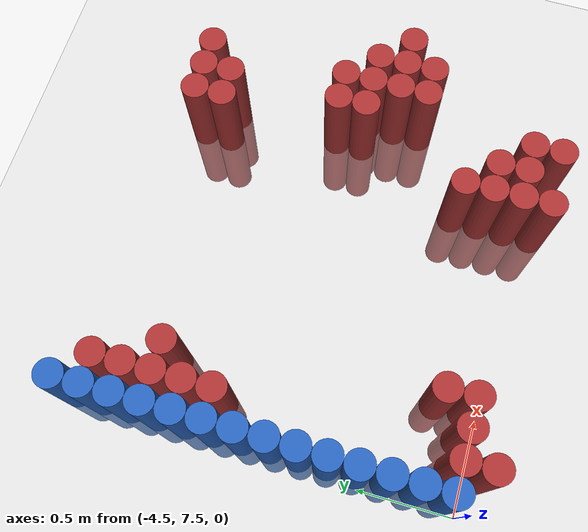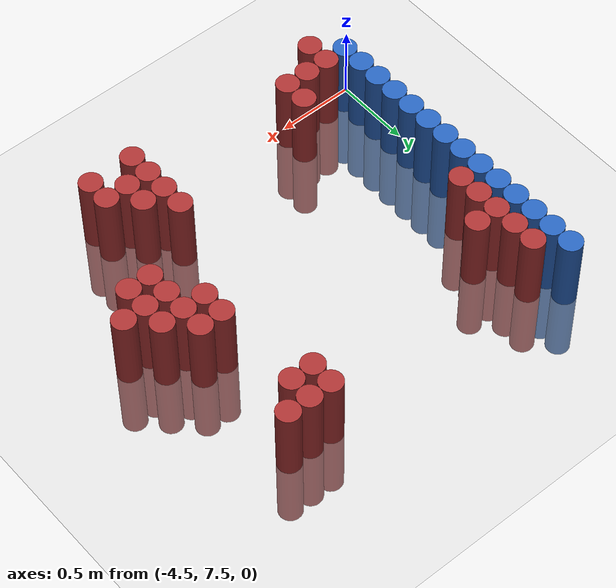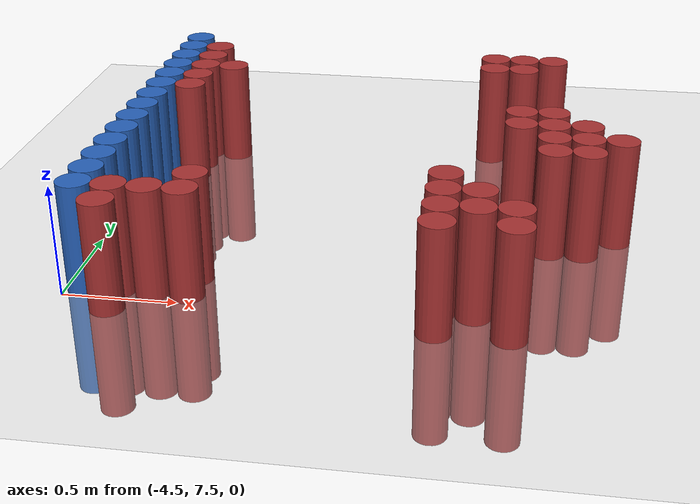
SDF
<sdf version="1.6">
 <world name="default">
  <model name="ground_plane">
   <static>1</static>
   <link name="link">
    <collision name="collision">
     <geometry><plane><normal>0 0 1</normal><size>100 100</size></plane></geometry>
     <surface><friction><ode><mu>100</mu><mu2>50</mu2></ode></friction></surface>
    </collision>
    <visual name="visual">
     <cast_shadows>0</cast_shadows>
     <geometry><plane><normal>0 0 1</normal><size>100 100</size></plane></geometry>
     <material>
      <script><uri>file://media/materials/scripts/gazebo.material</uri><name>Gazebo/Grey</name></script>
     </material>
    </visual>
   </link>
  </model>
  <model name="unit_cylinder_112">
   <static>1</static>
   <pose>-4.425000 7.575000 0.000000 0.000000 0.000000 0.000000</pose>
   <link name="link">
    <inertial>
     <mass>1</mass>
     <inertia><ixx>0.145833</ixx><ixy>0</ixy><ixz>0</ixz><iyy>0.145833</iyy><iyz>0</iyz><izz>0.125</izz></inertia>
    </inertial>
    <collision name="collision">
     <geometry><cylinder><radius>0.075000</radius><length>1</length></cylinder></geometry>
    </collision>
    <visual name="visual">
     <geometry><cylinder><radius>0.075000</radius><length>1</length></cylinder></geometry>
     <material>
      <ambient>0.152000 0.379000 0.720000 1</ambient>
      <diffuse>0.152000 0.379000 0.720000 1</diffuse>
     </material>
     <material>
      <script><name>Gazebo/Grey</name><uri>file://media/materials/scripts/gazebo.material</uri></script>
     </material>
    </visual>
   </link>
  </model>
  <model name="unit_cylinder_113">
   <static>1</static>
   <pose>-4.425000 7.725000 0.000000 0.000000 0.000000 0.000000</pose>
   <link name="link">
    <inertial>
     <mass>1</mass>
     <inertia><ixx>0.145833</ixx><ixy>0</ixy><ixz>0</ixz><iyy>0.145833</iyy><iyz>0</iyz><izz>0.125</izz></inertia>
    </inertial>
    <collision name="collision">
     <geometry><cylinder><radius>0.075000</radius><length>1</length></cylinder></geometry>
    </collision>
    <visual name="visual">
     <geometry><cylinder><radius>0.075000</radius><length>1</length></cylinder></geometry>
     <material>
      <ambient>0.152000 0.379000 0.720000 1</ambient>
      <diffuse>0.152000 0.379000 0.720000 1</diffuse>
     </material>
     <material>
      <script><name>Gazebo/Grey</name><uri>file://media/materials/scripts/gazebo.material</uri></script>
     </material>
    </visual>
   </link>
  </model>
  <model name="unit_cylinder_114">
   <static>1</static>
   <pose>-4.425000 7.875000 0.000000 0.000000 0.000000 0.000000</pose>
   <link name="link">
    <inertial>
     <mass>1</mass>
     <inertia><ixx>0.145833</ixx><ixy>0</ixy><ixz>0</ixz><iyy>0.145833</iyy><iyz>0</iyz><izz>0.125</izz></inertia>
    </inertial>
    <collision name="collision">
     <geometry><cylinder><radius>0.075000</radius><length>1</length></cylinder></geometry>
    </collision>
    <visual name="visual">
     <geometry><cylinder><radius>0.075000</radius><length>1</length></cylinder></geometry>
     <material>
      <ambient>0.152000 0.379000 0.720000 1</ambient>
      <diffuse>0.152000 0.379000 0.720000 1</diffuse>
     </material>
     <material>
      <script><name>Gazebo/Grey</name><uri>file://media/materials/scripts/gazebo.material</uri></script>
     </material>
    </visual>
   </link>
  </model>
  <model name="unit_cylinder_115">
   <static>1</static>
   <pose>-4.425000 8.025000 0.000000 0.000000 0.000000 0.000000</pose>
   <link name="link">
    <inertial>
     <mass>1</mass>
     <inertia><ixx>0.145833</ixx><ixy>0</ixy><ixz>0</ixz><iyy>0.145833</iyy><iyz>0</iyz><izz>0.125</izz></inertia>
    </inertial>
    <collision name="collision">
     <geometry><cylinder><radius>0.075000</radius><length>1</length></cylinder></geometry>
    </collision>
    <visual name="visual">
     <geometry><cylinder><radius>0.075000</radius><length>1</length></cylinder></geometry>
     <material>
      <ambient>0.152000 0.379000 0.720000 1</ambient>
      <diffuse>0.152000 0.379000 0.720000 1</diffuse>
     </material>
     <material>
      <script><name>Gazebo/Grey</name><uri>file://media/materials/scripts/gazebo.material</uri></script>
     </material>
    </visual>
   </link>
  </model>
  <model name="unit_cylinder_116">
   <static>1</static>
   <pose>-4.425000 8.175000 0.000000 0.000000 0.000000 0.000000</pose>
   <link name="link">
    <inertial>
     <mass>1</mass>
     <inertia><ixx>0.145833</ixx><ixy>0</ixy><ixz>0</ixz><iyy>0.145833</iyy><iyz>0</iyz><izz>0.125</izz></inertia>
    </inertial>
    <collision name="collision">
     <geometry><cylinder><radius>0.075000</radius><length>1</length></cylinder></geometry>
    </collision>
    <visual name="visual">
     <geometry><cylinder><radius>0.075000</radius><length>1</length></cylinder></geometry>
     <material>
      <ambient>0.152000 0.379000 0.720000 1</ambient>
      <diffuse>0.152000 0.379000 0.720000 1</diffuse>
     </material>
     <material>
      <script><name>Gazebo/Grey</name><uri>file://media/materials/scripts/gazebo.material</uri></script>
     </material>
    </visual>
   </link>
  </model>
  <model name="unit_cylinder_117">
   <static>1</static>
   <pose>-4.425000 8.325000 0.000000 0.000000 0.000000 0.000000</pose>
   <link name="link">
    <inertial>
     <mass>1</mass>
     <inertia><ixx>0.145833</ixx><ixy>0</ixy><ixz>0</ixz><iyy>0.145833</iyy><iyz>0</iyz><izz>0.125</izz></inertia>
    </inertial>
    <collision name="collision">
     <geometry><cylinder><radius>0.075000</radius><length>1</length></cylinder></geometry>
    </collision>
    <visual name="visual">
     <geometry><cylinder><radius>0.075000</radius><length>1</length></cylinder></geometry>
     <material>
      <ambient>0.152000 0.379000 0.720000 1</ambient>
      <diffuse>0.152000 0.379000 0.720000 1</diffuse>
     </material>
     <material>
      <script><name>Gazebo/Grey</name><uri>file://media/materials/scripts/gazebo.material</uri></script>
     </material>
    </visual>
   </link>
  </model>
  <model name="unit_cylinder_118">
   <static>1</static>
   <pose>-4.425000 8.475000 0.000000 0.000000 0.000000 0.000000</pose>
   <link name="link">
    <inertial>
     <mass>1</mass>
     <inertia><ixx>0.145833</ixx><ixy>0</ixy><ixz>0</ixz><iyy>0.145833</iyy><iyz>0</iyz><izz>0.125</izz></inertia>
    </inertial>
    <collision name="collision">
     <geometry><cylinder><radius>0.075000</radius><length>1</length></cylinder></geometry>
    </collision>
    <visual name="visual">
     <geometry><cylinder><radius>0.075000</radius><length>1</length></cylinder></geometry>
     <material>
      <ambient>0.152000 0.379000 0.720000 1</ambient>
      <diffuse>0.152000 0.379000 0.720000 1</diffuse>
     </material>
     <material>
      <script><name>Gazebo/Grey</name><uri>file://media/materials/scripts/gazebo.material</uri></script>
     </material>
    </visual>
   </link>
  </model>
  <model name="unit_cylinder_119">
   <static>1</static>
   <pose>-4.425000 8.625000 0.000000 0.000000 0.000000 0.000000</pose>
   <link name="link">
    <inertial>
     <mass>1</mass>
     <inertia><ixx>0.145833</ixx><ixy>0</ixy><ixz>0</ixz><iyy>0.145833</iyy><iyz>0</iyz><izz>0.125</izz></inertia>
    </inertial>
    <collision name="collision">
     <geometry><cylinder><radius>0.075000</radius><length>1</length></cylinder></geometry>
    </collision>
    <visual name="visual">
     <geometry><cylinder><radius>0.075000</radius><length>1</length></cylinder></geometry>
     <material>
      <ambient>0.152000 0.379000 0.720000 1</ambient>
      <diffuse>0.152000 0.379000 0.720000 1</diffuse>
     </material>
     <material>
      <script><name>Gazebo/Grey</name><uri>file://media/materials/scripts/gazebo.material</uri></script>
     </material>
    </visual>
   </link>
  </model>
  <model name="unit_cylinder_120">
   <static>1</static>
   <pose>-4.425000 8.775000 0.000000 0.000000 0.000000 0.000000</pose>
   <link name="link">
    <inertial>
     <mass>1</mass>
     <inertia><ixx>0.145833</ixx><ixy>0</ixy><ixz>0</ixz><iyy>0.145833</iyy><iyz>0</iyz><izz>0.125</izz></inertia>
    </inertial>
    <collision name="collision">
     <geometry><cylinder><radius>0.075000</radius><length>1</length></cylinder></geometry>
    </collision>
    <visual name="visual">
     <geometry><cylinder><radius>0.075000</radius><length>1</length></cylinder></geometry>
     <material>
      <ambient>0.152000 0.379000 0.720000 1</ambient>
      <diffuse>0.152000 0.379000 0.720000 1</diffuse>
     </material>
     <material>
      <script><name>Gazebo/Grey</name><uri>file://media/materials/scripts/gazebo.material</uri></script>
     </material>
    </visual>
   </link>
  </model>
  <model name="unit_cylinder_121">
   <static>1</static>
   <pose>-4.425000 8.925000 0.000000 0.000000 0.000000 0.000000</pose>
   <link name="link">
    <inertial>
     <mass>1</mass>
     <inertia><ixx>0.145833</ixx><ixy>0</ixy><ixz>0</ixz><iyy>0.145833</iyy><iyz>0</iyz><izz>0.125</izz></inertia>
    </inertial>
    <collision name="collision">
     <geometry><cylinder><radius>0.075000</radius><length>1</length></cylinder></geometry>
    </collision>
    <visual name="visual">
     <geometry><cylinder><radius>0.075000</radius><length>1</length></cylinder></geometry>
     <material>
      <ambient>0.152000 0.379000 0.720000 1</ambient>
      <diffuse>0.152000 0.379000 0.720000 1</diffuse>
     </material>
     <material>
      <script><name>Gazebo/Grey</name><uri>file://media/materials/scripts/gazebo.material</uri></script>
     </material>
    </visual>
   </link>
  </model>
  <model name="unit_cylinder_122">
   <static>1</static>
   <pose>-4.425000 9.075000 0.000000 0.000000 0.000000 0.000000</pose>
   <link name="link">
    <inertial>
     <mass>1</mass>
     <inertia><ixx>0.145833</ixx><ixy>0</ixy><ixz>0</ixz><iyy>0.145833</iyy><iyz>0</iyz><izz>0.125</izz></inertia>
    </inertial>
    <collision name="collision">
     <geometry><cylinder><radius>0.075000</radius><length>1</length></cylinder></geometry>
    </collision>
    <visual name="visual">
     <geometry><cylinder><radius>0.075000</radius><length>1</length></cylinder></geometry>
     <material>
      <ambient>0.152000 0.379000 0.720000 1</ambient>
      <diffuse>0.152000 0.379000 0.720000 1</diffuse>
     </material>
     <material>
      <script><name>Gazebo/Grey</name><uri>file://media/materials/scripts/gazebo.material</uri></script>
     </material>
    </visual>
   </link>
  </model>
  <model name="unit_cylinder_123">
   <static>1</static>
   <pose>-4.425000 9.225000 0.000000 0.000000 0.000000 0.000000</pose>
   <link name="link">
    <inertial>
     <mass>1</mass>
     <inertia><ixx>0.145833</ixx><ixy>0</ixy><ixz>0</ixz><iyy>0.145833</iyy><iyz>0</iyz><izz>0.125</izz></inertia>
    </inertial>
    <collision name="collision">
     <geometry><cylinder><radius>0.075000</radius><length>1</length></cylinder></geometry>
    </collision>
    <visual name="visual">
     <geometry><cylinder><radius>0.075000</radius><length>1</length></cylinder></geometry>
     <material>
      <ambient>0.152000 0.379000 0.720000 1</ambient>
      <diffuse>0.152000 0.379000 0.720000 1</diffuse>
     </material>
     <material>
      <script><name>Gazebo/Grey</name><uri>file://media/materials/scripts/gazebo.material</uri></script>
     </material>
    </visual>
   </link>
  </model>
  <model name="unit_cylinder_124">
   <static>1</static>
   <pose>-4.425000 9.375000 0.000000 0.000000 0.000000 0.000000</pose>
   <link name="link">
    <inertial>
     <mass>1</mass>
     <inertia><ixx>0.145833</ixx><ixy>0</ixy><ixz>0</ixz><iyy>0.145833</iyy><iyz>0</iyz><izz>0.125</izz></inertia>
    </inertial>
    <collision name="collision">
     <geometry><cylinder><radius>0.075000</radius><length>1</length></cylinder></geometry>
    </collision>
    <visual name="visual">
     <geometry><cylinder><radius>0.075000</radius><length>1</length></cylinder></geometry>
     <material>
      <ambient>0.152000 0.379000 0.720000 1</ambient>
      <diffuse>0.152000 0.379000 0.720000 1</diffuse>
     </material>
     <material>
      <script><name>Gazebo/Grey</name><uri>file://media/materials/scripts/gazebo.material</uri></script>
     </material>
    </visual>
   </link>
  </model>
  <model name="unit_cylinder_125">
   <static>1</static>
   <pose>-4.425000 9.525000 0.000000 0.000000 0.000000 0.000000</pose>
   <link name="link">
    <inertial>
     <mass>1</mass>
     <inertia><ixx>0.145833</ixx><ixy>0</ixy><ixz>0</ixz><iyy>0.145833</iyy><iyz>0</iyz><izz>0.125</izz></inertia>
    </inertial>
    <collision name="collision">
     <geometry><cylinder><radius>0.075000</radius><length>1</length></cylinder></geometry>
    </collision>
    <visual name="visual">
     <geometry><cylinder><radius>0.075000</radius><length>1</length></cylinder></geometry>
     <material>
      <ambient>0.152000 0.379000 0.720000 1</ambient>
      <diffuse>0.152000 0.379000 0.720000 1</diffuse>
     </material>
     <material>
      <script><name>Gazebo/Grey</name><uri>file://media/materials/scripts/gazebo.material</uri></script>
     </material>
    </visual>
   </link>
  </model>
  <model name="unit_cylinder_138">
   <static>1</static>
   <pose>-4.275000 7.425000 0.000000 0.000000 0.000000 0.000000</pose>
   <link name="link">
    <inertial>
     <mass>1</mass>
     <inertia><ixx>0.145833</ixx><ixy>0</ixy><ixz>0</ixz><iyy>0.145833</iyy><iyz>0</iyz><izz>0.125</izz></inertia>
    </inertial>
    <collision name="collision">
     <geometry><cylinder><radius>0.075000</radius><length>1</length></cylinder></geometry>
    </collision>
    <visual name="visual">
     <geometry><cylinder><radius>0.075000</radius><length>1</length></cylinder></geometry>
     <material>
      <ambient>0.648000 0.192000 0.192000 1</ambient>
      <diffuse>0.648000 0.192000 0.192000 1</diffuse>
     </material>
     <material>
      <script><name>Gazebo/Grey</name><uri>file://media/materials/scripts/gazebo.material</uri></script>
     </material>
    </visual>
   </link>
  </model>
  <model name="unit_cylinder_139">
   <static>1</static>
   <pose>-4.275000 7.575000 0.000000 0.000000 0.000000 0.000000</pose>
   <link name="link">
    <inertial>
     <mass>1</mass>
     <inertia><ixx>0.145833</ixx><ixy>0</ixy><ixz>0</ixz><iyy>0.145833</iyy><iyz>0</iyz><izz>0.125</izz></inertia>
    </inertial>
    <collision name="collision">
     <geometry><cylinder><radius>0.075000</radius><length>1</length></cylinder></geometry>
    </collision>
    <visual name="visual">
     <geometry><cylinder><radius>0.075000</radius><length>1</length></cylinder></geometry>
     <material>
      <ambient>0.648000 0.192000 0.192000 1</ambient>
      <diffuse>0.648000 0.192000 0.192000 1</diffuse>
     </material>
     <material>
      <script><name>Gazebo/Grey</name><uri>file://media/materials/scripts/gazebo.material</uri></script>
     </material>
    </visual>
   </link>
  </model>
  <model name="unit_cylinder_140">
   <static>1</static>
   <pose>-4.275000 8.775000 0.000000 0.000000 0.000000 0.000000</pose>
   <link name="link">
    <inertial>
     <mass>1</mass>
     <inertia><ixx>0.145833</ixx><ixy>0</ixy><ixz>0</ixz><iyy>0.145833</iyy><iyz>0</iyz><izz>0.125</izz></inertia>
    </inertial>
    <collision name="collision">
     <geometry><cylinder><radius>0.075000</radius><length>1</length></cylinder></geometry>
    </collision>
    <visual name="visual">
     <geometry><cylinder><radius>0.075000</radius><length>1</length></cylinder></geometry>
     <material>
      <ambient>0.648000 0.192000 0.192000 1</ambient>
      <diffuse>0.648000 0.192000 0.192000 1</diffuse>
     </material>
     <material>
      <script><name>Gazebo/Grey</name><uri>file://media/materials/scripts/gazebo.material</uri></script>
     </material>
    </visual>
   </link>
  </model>
  <model name="unit_cylinder_141">
   <static>1</static>
   <pose>-4.275000 8.925000 0.000000 0.000000 0.000000 0.000000</pose>
   <link name="link">
    <inertial>
     <mass>1</mass>
     <inertia><ixx>0.145833</ixx><ixy>0</ixy><ixz>0</ixz><iyy>0.145833</iyy><iyz>0</iyz><izz>0.125</izz></inertia>
    </inertial>
    <collision name="collision">
     <geometry><cylinder><radius>0.075000</radius><length>1</length></cylinder></geometry>
    </collision>
    <visual name="visual">
     <geometry><cylinder><radius>0.075000</radius><length>1</length></cylinder></geometry>
     <material>
      <ambient>0.648000 0.192000 0.192000 1</ambient>
      <diffuse>0.648000 0.192000 0.192000 1</diffuse>
     </material>
     <material>
      <script><name>Gazebo/Grey</name><uri>file://media/materials/scripts/gazebo.material</uri></script>
     </material>
    </visual>
   </link>
  </model>
  <model name="unit_cylinder_142">
   <static>1</static>
   <pose>-4.275000 9.075000 0.000000 0.000000 0.000000 0.000000</pose>
   <link name="link">
    <inertial>
     <mass>1</mass>
     <inertia><ixx>0.145833</ixx><ixy>0</ixy><ixz>0</ixz><iyy>0.145833</iyy><iyz>0</iyz><izz>0.125</izz></inertia>
    </inertial>
    <collision name="collision">
     <geometry><cylinder><radius>0.075000</radius><length>1</length></cylinder></geometry>
    </collision>
    <visual name="visual">
     <geometry><cylinder><radius>0.075000</radius><length>1</length></cylinder></geometry>
     <material>
      <ambient>0.648000 0.192000 0.192000 1</ambient>
      <diffuse>0.648000 0.192000 0.192000 1</diffuse>
     </material>
     <material>
      <script><name>Gazebo/Grey</name><uri>file://media/materials/scripts/gazebo.material</uri></script>
     </material>
    </visual>
   </link>
  </model>
  <model name="unit_cylinder_143">
   <static>1</static>
   <pose>-4.275000 9.225000 0.000000 0.000000 0.000000 0.000000</pose>
   <link name="link">
    <inertial>
     <mass>1</mass>
     <inertia><ixx>0.145833</ixx><ixy>0</ixy><ixz>0</ixz><iyy>0.145833</iyy><iyz>0</iyz><izz>0.125</izz></inertia>
    </inertial>
    <collision name="collision">
     <geometry><cylinder><radius>0.075000</radius><length>1</length></cylinder></geometry>
    </collision>
    <visual name="visual">
     <geometry><cylinder><radius>0.075000</radius><length>1</length></cylinder></geometry>
     <material>
      <ambient>0.648000 0.192000 0.192000 1</ambient>
      <diffuse>0.648000 0.192000 0.192000 1</diffuse>
     </material>
     <material>
      <script><name>Gazebo/Grey</name><uri>file://media/materials/scripts/gazebo.material</uri></script>
     </material>
    </visual>
   </link>
  </model>
  <model name="unit_cylinder_144">
   <static>1</static>
   <pose>-4.275000 9.375000 0.000000 0.000000 0.000000 0.000000</pose>
   <link name="link">
    <inertial>
     <mass>1</mass>
     <inertia><ixx>0.145833</ixx><ixy>0</ixy><ixz>0</ixz><iyy>0.145833</iyy><iyz>0</iyz><izz>0.125</izz></inertia>
    </inertial>
    <collision name="collision">
     <geometry><cylinder><radius>0.075000</radius><length>1</length></cylinder></geometry>
    </collision>
    <visual name="visual">
     <geometry><cylinder><radius>0.075000</radius><length>1</length></cylinder></geometry>
     <material>
      <ambient>0.648000 0.192000 0.192000 1</ambient>
      <diffuse>0.648000 0.192000 0.192000 1</diffuse>
     </material>
     <material>
      <script><name>Gazebo/Grey</name><uri>file://media/materials/scripts/gazebo.material</uri></script>
     </material>
    </visual>
   </link>
  </model>
  <model name="unit_cylinder_154">
   <static>1</static>
   <pose>-4.125000 7.575000 0.000000 0.000000 0.000000 0.000000</pose>
   <link name="link">
    <inertial>
     <mass>1</mass>
     <inertia><ixx>0.145833</ixx><ixy>0</ixy><ixz>0</ixz><iyy>0.145833</iyy><iyz>0</iyz><izz>0.125</izz></inertia>
    </inertial>
    <collision name="collision">
     <geometry><cylinder><radius>0.075000</radius><length>1</length></cylinder></geometry>
    </collision>
    <visual name="visual">
     <geometry><cylinder><radius>0.075000</radius><length>1</length></cylinder></geometry>
     <material>
      <ambient>0.648000 0.192000 0.192000 1</ambient>
      <diffuse>0.648000 0.192000 0.192000 1</diffuse>
     </material>
     <material>
      <script><name>Gazebo/Grey</name><uri>file://media/materials/scripts/gazebo.material</uri></script>
     </material>
    </visual>
   </link>
  </model>
  <model name="unit_cylinder_155">
   <static>1</static>
   <pose>-4.125000 9.075000 0.000000 0.000000 0.000000 0.000000</pose>
   <link name="link">
    <inertial>
     <mass>1</mass>
     <inertia><ixx>0.145833</ixx><ixy>0</ixy><ixz>0</ixz><iyy>0.145833</iyy><iyz>0</iyz><izz>0.125</izz></inertia>
    </inertial>
    <collision name="collision">
     <geometry><cylinder><radius>0.075000</radius><length>1</length></cylinder></geometry>
    </collision>
    <visual name="visual">
     <geometry><cylinder><radius>0.075000</radius><length>1</length></cylinder></geometry>
     <material>
      <ambient>0.648000 0.192000 0.192000 1</ambient>
      <diffuse>0.648000 0.192000 0.192000 1</diffuse>
     </material>
     <material>
      <script><name>Gazebo/Grey</name><uri>file://media/materials/scripts/gazebo.material</uri></script>
     </material>
    </visual>
   </link>
  </model>
  <model name="unit_cylinder_159">
   <static>1</static>
   <pose>-3.975000 7.575000 0.000000 0.000000 0.000000 0.000000</pose>
   <link name="link">
    <inertial>
     <mass>1</mass>
     <inertia><ixx>0.145833</ixx><ixy>0</ixy><ixz>0</ixz><iyy>0.145833</iyy><iyz>0</iyz><izz>0.125</izz></inertia>
    </inertial>
    <collision name="collision">
     <geometry><cylinder><radius>0.075000</radius><length>1</length></cylinder></geometry>
    </collision>
    <visual name="visual">
     <geometry><cylinder><radius>0.075000</radius><length>1</length></cylinder></geometry>
     <material>
      <ambient>0.648000 0.192000 0.192000 1</ambient>
      <diffuse>0.648000 0.192000 0.192000 1</diffuse>
     </material>
     <material>
      <script><name>Gazebo/Grey</name><uri>file://media/materials/scripts/gazebo.material</uri></script>
     </material>
    </visual>
   </link>
  </model>
  <model name="unit_cylinder_160">
   <static>1</static>
   <pose>-3.975000 7.725000 0.000000 0.000000 0.000000 0.000000</pose>
   <link name="link">
    <inertial>
     <mass>1</mass>
     <inertia><ixx>0.145833</ixx><ixy>0</ixy><ixz>0</ixz><iyy>0.145833</iyy><iyz>0</iyz><izz>0.125</izz></inertia>
    </inertial>
    <collision name="collision">
     <geometry><cylinder><radius>0.075000</radius><length>1</length></cylinder></geometry>
    </collision>
    <visual name="visual">
     <geometry><cylinder><radius>0.075000</radius><length>1</length></cylinder></geometry>
     <material>
      <ambient>0.648000 0.192000 0.192000 1</ambient>
      <diffuse>0.648000 0.192000 0.192000 1</diffuse>
     </material>
     <material>
      <script><name>Gazebo/Grey</name><uri>file://media/materials/scripts/gazebo.material</uri></script>
     </material>
    </visual>
   </link>
  </model>
  <model name="unit_cylinder_169">
   <static>1</static>
   <pose>-2.925000 7.425000 0.000000 0.000000 0.000000 0.000000</pose>
   <link name="link">
    <inertial>
     <mass>1</mass>
     <inertia><ixx>0.145833</ixx><ixy>0</ixy><ixz>0</ixz><iyy>0.145833</iyy><iyz>0</iyz><izz>0.125</izz></inertia>
    </inertial>
    <collision name="collision">
     <geometry><cylinder><radius>0.075000</radius><length>1</length></cylinder></geometry>
    </collision>
    <visual name="visual">
     <geometry><cylinder><radius>0.075000</radius><length>1</length></cylinder></geometry>
     <material>
      <ambient>0.648000 0.192000 0.192000 1</ambient>
      <diffuse>0.648000 0.192000 0.192000 1</diffuse>
     </material>
     <material>
      <script><name>Gazebo/Grey</name><uri>file://media/materials/scripts/gazebo.material</uri></script>
     </material>
    </visual>
   </link>
  </model>
  <model name="unit_cylinder_170">
   <static>1</static>
   <pose>-2.925000 7.575000 0.000000 0.000000 0.000000 0.000000</pose>
   <link name="link">
    <inertial>
     <mass>1</mass>
     <inertia><ixx>0.145833</ixx><ixy>0</ixy><ixz>0</ixz><iyy>0.145833</iyy><iyz>0</iyz><izz>0.125</izz></inertia>
    </inertial>
    <collision name="collision">
     <geometry><cylinder><radius>0.075000</radius><length>1</length></cylinder></geometry>
    </collision>
    <visual name="visual">
     <geometry><cylinder><radius>0.075000</radius><length>1</length></cylinder></geometry>
     <material>
      <ambient>0.648000 0.192000 0.192000 1</ambient>
      <diffuse>0.648000 0.192000 0.192000 1</diffuse>
     </material>
     <material>
      <script><name>Gazebo/Grey</name><uri>file://media/materials/scripts/gazebo.material</uri></script>
     </material>
    </visual>
   </link>
  </model>
  <model name="unit_cylinder_171">
   <static>1</static>
   <pose>-2.925000 7.725000 0.000000 0.000000 0.000000 0.000000</pose>
   <link name="link">
    <inertial>
     <mass>1</mass>
     <inertia><ixx>0.145833</ixx><ixy>0</ixy><ixz>0</ixz><iyy>0.145833</iyy><iyz>0</iyz><izz>0.125</izz></inertia>
    </inertial>
    <collision name="collision">
     <geometry><cylinder><radius>0.075000</radius><length>1</length></cylinder></geometry>
    </collision>
    <visual name="visual">
     <geometry><cylinder><radius>0.075000</radius><length>1</length></cylinder></geometry>
     <material>
      <ambient>0.648000 0.192000 0.192000 1</ambient>
      <diffuse>0.648000 0.192000 0.192000 1</diffuse>
     </material>
     <material>
      <script><name>Gazebo/Grey</name><uri>file://media/materials/scripts/gazebo.material</uri></script>
     </material>
    </visual>
   </link>
  </model>
  <model name="unit_cylinder_172">
   <static>1</static>
   <pose>-2.925000 7.875000 0.000000 0.000000 0.000000 0.000000</pose>
   <link name="link">
    <inertial>
     <mass>1</mass>
     <inertia><ixx>0.145833</ixx><ixy>0</ixy><ixz>0</ixz><iyy>0.145833</iyy><iyz>0</iyz><izz>0.125</izz></inertia>
    </inertial>
    <collision name="collision">
     <geometry><cylinder><radius>0.075000</radius><length>1</length></cylinder></geometry>
    </collision>
    <visual name="visual">
     <geometry><cylinder><radius>0.075000</radius><length>1</length></cylinder></geometry>
     <material>
      <ambient>0.648000 0.192000 0.192000 1</ambient>
      <diffuse>0.648000 0.192000 0.192000 1</diffuse>
     </material>
     <material>
      <script><name>Gazebo/Grey</name><uri>file://media/materials/scripts/gazebo.material</uri></script>
     </material>
    </visual>
   </link>
  </model>
  <model name="unit_cylinder_179">
   <static>1</static>
   <pose>-2.775000 7.575000 0.000000 0.000000 0.000000 0.000000</pose>
   <link name="link">
    <inertial>
     <mass>1</mass>
     <inertia><ixx>0.145833</ixx><ixy>0</ixy><ixz>0</ixz><iyy>0.145833</iyy><iyz>0</iyz><izz>0.125</izz></inertia>
    </inertial>
    <collision name="collision">
     <geometry><cylinder><radius>0.075000</radius><length>1</length></cylinder></geometry>
    </collision>
    <visual name="visual">
     <geometry><cylinder><radius>0.075000</radius><length>1</length></cylinder></geometry>
     <material>
      <ambient>0.648000 0.192000 0.192000 1</ambient>
      <diffuse>0.648000 0.192000 0.192000 1</diffuse>
     </material>
     <material>
      <script><name>Gazebo/Grey</name><uri>file://media/materials/scripts/gazebo.material</uri></script>
     </material>
    </visual>
   </link>
  </model>
  <model name="unit_cylinder_180">
   <static>1</static>
   <pose>-2.775000 7.725000 0.000000 0.000000 0.000000 0.000000</pose>
   <link name="link">
    <inertial>
     <mass>1</mass>
     <inertia><ixx>0.145833</ixx><ixy>0</ixy><ixz>0</ixz><iyy>0.145833</iyy><iyz>0</iyz><izz>0.125</izz></inertia>
    </inertial>
    <collision name="collision">
     <geometry><cylinder><radius>0.075000</radius><length>1</length></cylinder></geometry>
    </collision>
    <visual name="visual">
     <geometry><cylinder><radius>0.075000</radius><length>1</length></cylinder></geometry>
     <material>
      <ambient>0.648000 0.192000 0.192000 1</ambient>
      <diffuse>0.648000 0.192000 0.192000 1</diffuse>
     </material>
     <material>
      <script><name>Gazebo/Grey</name><uri>file://media/materials/scripts/gazebo.material</uri></script>
     </material>
    </visual>
   </link>
  </model>
  <model name="unit_cylinder_181">
   <static>1</static>
   <pose>-2.775000 9.225000 0.000000 0.000000 0.000000 0.000000</pose>
   <link name="link">
    <inertial>
     <mass>1</mass>
     <inertia><ixx>0.145833</ixx><ixy>0</ixy><ixz>0</ixz><iyy>0.145833</iyy><iyz>0</iyz><izz>0.125</izz></inertia>
    </inertial>
    <collision name="collision">
     <geometry><cylinder><radius>0.075000</radius><length>1</length></cylinder></geometry>
    </collision>
    <visual name="visual">
     <geometry><cylinder><radius>0.075000</radius><length>1</length></cylinder></geometry>
     <material>
      <ambient>0.648000 0.192000 0.192000 1</ambient>
      <diffuse>0.648000 0.192000 0.192000 1</diffuse>
     </material>
     <material>
      <script><name>Gazebo/Grey</name><uri>file://media/materials/scripts/gazebo.material</uri></script>
     </material>
    </visual>
   </link>
  </model>
  <model name="unit_cylinder_182">
   <static>1</static>
   <pose>-2.775000 9.375000 0.000000 0.000000 0.000000 0.000000</pose>
   <link name="link">
    <inertial>
     <mass>1</mass>
     <inertia><ixx>0.145833</ixx><ixy>0</ixy><ixz>0</ixz><iyy>0.145833</iyy><iyz>0</iyz><izz>0.125</izz></inertia>
    </inertial>
    <collision name="collision">
     <geometry><cylinder><radius>0.075000</radius><length>1</length></cylinder></geometry>
    </collision>
    <visual name="visual">
     <geometry><cylinder><radius>0.075000</radius><length>1</length></cylinder></geometry>
     <material>
      <ambient>0.648000 0.192000 0.192000 1</ambient>
      <diffuse>0.648000 0.192000 0.192000 1</diffuse>
     </material>
     <material>
      <script><name>Gazebo/Grey</name><uri>file://media/materials/scripts/gazebo.material</uri></script>
     </material>
    </visual>
   </link>
  </model>
  <model name="unit_cylinder_193">
   <static>1</static>
   <pose>-2.625000 7.425000 0.000000 0.000000 0.000000 0.000000</pose>
   <link name="link">
    <inertial>
     <mass>1</mass>
     <inertia><ixx>0.145833</ixx><ixy>0</ixy><ixz>0</ixz><iyy>0.145833</iyy><iyz>0</iyz><izz>0.125</izz></inertia>
    </inertial>
    <collision name="collision">
     <geometry><cylinder><radius>0.075000</radius><length>1</length></cylinder></geometry>
    </collision>
    <visual name="visual">
     <geometry><cylinder><radius>0.075000</radius><length>1</length></cylinder></geometry>
     <material>
      <ambient>0.648000 0.192000 0.192000 1</ambient>
      <diffuse>0.648000 0.192000 0.192000 1</diffuse>
     </material>
     <material>
      <script><name>Gazebo/Grey</name><uri>file://media/materials/scripts/gazebo.material</uri></script>
     </material>
    </visual>
   </link>
  </model>
  <model name="unit_cylinder_194">
   <static>1</static>
   <pose>-2.625000 7.575000 0.000000 0.000000 0.000000 0.000000</pose>
   <link name="link">
    <inertial>
     <mass>1</mass>
     <inertia><ixx>0.145833</ixx><ixy>0</ixy><ixz>0</ixz><iyy>0.145833</iyy><iyz>0</iyz><izz>0.125</izz></inertia>
    </inertial>
    <collision name="collision">
     <geometry><cylinder><radius>0.075000</radius><length>1</length></cylinder></geometry>
    </collision>
    <visual name="visual">
     <geometry><cylinder><radius>0.075000</radius><length>1</length></cylinder></geometry>
     <material>
      <ambient>0.648000 0.192000 0.192000 1</ambient>
      <diffuse>0.648000 0.192000 0.192000 1</diffuse>
     </material>
     <material>
      <script><name>Gazebo/Grey</name><uri>file://media/materials/scripts/gazebo.material</uri></script>
     </material>
    </visual>
   </link>
  </model>
  <model name="unit_cylinder_195">
   <static>1</static>
   <pose>-2.625000 8.475000 0.000000 0.000000 0.000000 0.000000</pose>
   <link name="link">
    <inertial>
     <mass>1</mass>
     <inertia><ixx>0.145833</ixx><ixy>0</ixy><ixz>0</ixz><iyy>0.145833</iyy><iyz>0</iyz><izz>0.125</izz></inertia>
    </inertial>
    <collision name="collision">
     <geometry><cylinder><radius>0.075000</radius><length>1</length></cylinder></geometry>
    </collision>
    <visual name="visual">
     <geometry><cylinder><radius>0.075000</radius><length>1</length></cylinder></geometry>
     <material>
      <ambient>0.648000 0.192000 0.192000 1</ambient>
      <diffuse>0.648000 0.192000 0.192000 1</diffuse>
     </material>
     <material>
      <script><name>Gazebo/Grey</name><uri>file://media/materials/scripts/gazebo.material</uri></script>
     </material>
    </visual>
   </link>
  </model>
  <model name="unit_cylinder_196">
   <static>1</static>
   <pose>-2.625000 8.625000 0.000000 0.000000 0.000000 0.000000</pose>
   <link name="link">
    <inertial>
     <mass>1</mass>
     <inertia><ixx>0.145833</ixx><ixy>0</ixy><ixz>0</ixz><iyy>0.145833</iyy><iyz>0</iyz><izz>0.125</izz></inertia>
    </inertial>
    <collision name="collision">
     <geometry><cylinder><radius>0.075000</radius><length>1</length></cylinder></geometry>
    </collision>
    <visual name="visual">
     <geometry><cylinder><radius>0.075000</radius><length>1</length></cylinder></geometry>
     <material>
      <ambient>0.648000 0.192000 0.192000 1</ambient>
      <diffuse>0.648000 0.192000 0.192000 1</diffuse>
     </material>
     <material>
      <script><name>Gazebo/Grey</name><uri>file://media/materials/scripts/gazebo.material</uri></script>
     </material>
    </visual>
   </link>
  </model>
  <model name="unit_cylinder_197">
   <static>1</static>
   <pose>-2.625000 9.225000 0.000000 0.000000 0.000000 0.000000</pose>
   <link name="link">
    <inertial>
     <mass>1</mass>
     <inertia><ixx>0.145833</ixx><ixy>0</ixy><ixz>0</ixz><iyy>0.145833</iyy><iyz>0</iyz><izz>0.125</izz></inertia>
    </inertial>
    <collision name="collision">
     <geometry><cylinder><radius>0.075000</radius><length>1</length></cylinder></geometry>
    </collision>
    <visual name="visual">
     <geometry><cylinder><radius>0.075000</radius><length>1</length></cylinder></geometry>
     <material>
      <ambient>0.648000 0.192000 0.192000 1</ambient>
      <diffuse>0.648000 0.192000 0.192000 1</diffuse>
     </material>
     <material>
      <script><name>Gazebo/Grey</name><uri>file://media/materials/scripts/gazebo.material</uri></script>
     </material>
    </visual>
   </link>
  </model>
  <model name="unit_cylinder_198">
   <static>1</static>
   <pose>-2.625000 9.375000 0.000000 0.000000 0.000000 0.000000</pose>
   <link name="link">
    <inertial>
     <mass>1</mass>
     <inertia><ixx>0.145833</ixx><ixy>0</ixy><ixz>0</ixz><iyy>0.145833</iyy><iyz>0</iyz><izz>0.125</izz></inertia>
    </inertial>
    <collision name="collision">
     <geometry><cylinder><radius>0.075000</radius><length>1</length></cylinder></geometry>
    </collision>
    <visual name="visual">
     <geometry><cylinder><radius>0.075000</radius><length>1</length></cylinder></geometry>
     <material>
      <ambient>0.648000 0.192000 0.192000 1</ambient>
      <diffuse>0.648000 0.192000 0.192000 1</diffuse>
     </material>
     <material>
      <script><name>Gazebo/Grey</name><uri>file://media/materials/scripts/gazebo.material</uri></script>
     </material>
    </visual>
   </link>
  </model>
  <model name="unit_cylinder_207">
   <static>1</static>
   <pose>-2.475000 8.175000 0.000000 0.000000 0.000000 0.000000</pose>
   <link name="link">
    <inertial>
     <mass>1</mass>
     <inertia><ixx>0.145833</ixx><ixy>0</ixy><ixz>0</ixz><iyy>0.145833</iyy><iyz>0</iyz><izz>0.125</izz></inertia>
    </inertial>
    <collision name="collision">
     <geometry><cylinder><radius>0.075000</radius><length>1</length></cylinder></geometry>
    </collision>
    <visual name="visual">
     <geometry><cylinder><radius>0.075000</radius><length>1</length></cylinder></geometry>
     <material>
      <ambient>0.648000 0.192000 0.192000 1</ambient>
      <diffuse>0.648000 0.192000 0.192000 1</diffuse>
     </material>
     <material>
      <script><name>Gazebo/Grey</name><uri>file://media/materials/scripts/gazebo.material</uri></script>
     </material>
    </visual>
   </link>
  </model>
  <model name="unit_cylinder_208">
   <static>1</static>
   <pose>-2.475000 8.325000 0.000000 0.000000 0.000000 0.000000</pose>
   <link name="link">
    <inertial>
     <mass>1</mass>
     <inertia><ixx>0.145833</ixx><ixy>0</ixy><ixz>0</ixz><iyy>0.145833</iyy><iyz>0</iyz><izz>0.125</izz></inertia>
    </inertial>
    <collision name="collision">
     <geometry><cylinder><radius>0.075000</radius><length>1</length></cylinder></geometry>
    </collision>
    <visual name="visual">
     <geometry><cylinder><radius>0.075000</radius><length>1</length></cylinder></geometry>
     <material>
      <ambient>0.648000 0.192000 0.192000 1</ambient>
      <diffuse>0.648000 0.192000 0.192000 1</diffuse>
     </material>
     <material>
      <script><name>Gazebo/Grey</name><uri>file://media/materials/scripts/gazebo.material</uri></script>
     </material>
    </visual>
   </link>
  </model>
  <model name="unit_cylinder_209">
   <static>1</static>
   <pose>-2.475000 8.475000 0.000000 0.000000 0.000000 0.000000</pose>
   <link name="link">
    <inertial>
     <mass>1</mass>
     <inertia><ixx>0.145833</ixx><ixy>0</ixy><ixz>0</ixz><iyy>0.145833</iyy><iyz>0</iyz><izz>0.125</izz></inertia>
    </inertial>
    <collision name="collision">
     <geometry><cylinder><radius>0.075000</radius><length>1</length></cylinder></geometry>
    </collision>
    <visual name="visual">
     <geometry><cylinder><radius>0.075000</radius><length>1</length></cylinder></geometry>
     <material>
      <ambient>0.648000 0.192000 0.192000 1</ambient>
      <diffuse>0.648000 0.192000 0.192000 1</diffuse>
     </material>
     <material>
      <script><name>Gazebo/Grey</name><uri>file://media/materials/scripts/gazebo.material</uri></script>
     </material>
    </visual>
   </link>
  </model>
  <model name="unit_cylinder_210">
   <static>1</static>
   <pose>-2.475000 8.625000 0.000000 0.000000 0.000000 0.000000</pose>
   <link name="link">
    <inertial>
     <mass>1</mass>
     <inertia><ixx>0.145833</ixx><ixy>0</ixy><ixz>0</ixz><iyy>0.145833</iyy><iyz>0</iyz><izz>0.125</izz></inertia>
    </inertial>
    <collision name="collision">
     <geometry><cylinder><radius>0.075000</radius><length>1</length></cylinder></geometry>
    </collision>
    <visual name="visual">
     <geometry><cylinder><radius>0.075000</radius><length>1</length></cylinder></geometry>
     <material>
      <ambient>0.648000 0.192000 0.192000 1</ambient>
      <diffuse>0.648000 0.192000 0.192000 1</diffuse>
     </material>
     <material>
      <script><name>Gazebo/Grey</name><uri>file://media/materials/scripts/gazebo.material</uri></script>
     </material>
    </visual>
   </link>
  </model>
  <model name="unit_cylinder_211">
   <static>1</static>
   <pose>-2.475000 9.375000 0.000000 0.000000 0.000000 0.000000</pose>
   <link name="link">
    <inertial>
     <mass>1</mass>
     <inertia><ixx>0.145833</ixx><ixy>0</ixy><ixz>0</ixz><iyy>0.145833</iyy><iyz>0</iyz><izz>0.125</izz></inertia>
    </inertial>
    <collision name="collision">
     <geometry><cylinder><radius>0.075000</radius><length>1</length></cylinder></geometry>
    </collision>
    <visual name="visual">
     <geometry><cylinder><radius>0.075000</radius><length>1</length></cylinder></geometry>
     <material>
      <ambient>0.648000 0.192000 0.192000 1</ambient>
      <diffuse>0.648000 0.192000 0.192000 1</diffuse>
     </material>
     <material>
      <script><name>Gazebo/Grey</name><uri>file://media/materials/scripts/gazebo.material</uri></script>
     </material>
    </visual>
   </link>
  </model>
  <model name="unit_cylinder_216">
   <static>1</static>
   <pose>-2.325000 8.175000 0.000000 0.000000 0.000000 0.000000</pose>
   <link name="link">
    <inertial>
     <mass>1</mass>
     <inertia><ixx>0.145833</ixx><ixy>0</ixy><ixz>0</ixz><iyy>0.145833</iyy><iyz>0</iyz><izz>0.125</izz></inertia>
    </inertial>
    <collision name="collision">
     <geometry><cylinder><radius>0.075000</radius><length>1</length></cylinder></geometry>
    </collision>
    <visual name="visual">
     <geometry><cylinder><radius>0.075000</radius><length>1</length></cylinder></geometry>
     <material>
      <ambient>0.648000 0.192000 0.192000 1</ambient>
      <diffuse>0.648000 0.192000 0.192000 1</diffuse>
     </material>
     <material>
      <script><name>Gazebo/Grey</name><uri>file://media/materials/scripts/gazebo.material</uri></script>
     </material>
    </visual>
   </link>
  </model>
  <model name="unit_cylinder_217">
   <static>1</static>
   <pose>-2.325000 8.325000 0.000000 0.000000 0.000000 0.000000</pose>
   <link name="link">
    <inertial>
     <mass>1</mass>
     <inertia><ixx>0.145833</ixx><ixy>0</ixy><ixz>0</ixz><iyy>0.145833</iyy><iyz>0</iyz><izz>0.125</izz></inertia>
    </inertial>
    <collision name="collision">
     <geometry><cylinder><radius>0.075000</radius><length>1</length></cylinder></geometry>
    </collision>
    <visual name="visual">
     <geometry><cylinder><radius>0.075000</radius><length>1</length></cylinder></geometry>
     <material>
      <ambient>0.648000 0.192000 0.192000 1</ambient>
      <diffuse>0.648000 0.192000 0.192000 1</diffuse>
     </material>
     <material>
      <script><name>Gazebo/Grey</name><uri>file://media/materials/scripts/gazebo.material</uri></script>
     </material>
    </visual>
   </link>
  </model>
  <model name="unit_cylinder_218">
   <static>1</static>
   <pose>-2.325000 8.475000 0.000000 0.000000 0.000000 0.000000</pose>
   <link name="link">
    <inertial>
     <mass>1</mass>
     <inertia><ixx>0.145833</ixx><ixy>0</ixy><ixz>0</ixz><iyy>0.145833</iyy><iyz>0</iyz><izz>0.125</izz></inertia>
    </inertial>
    <collision name="collision">
     <geometry><cylinder><radius>0.075000</radius><length>1</length></cylinder></geometry>
    </collision>
    <visual name="visual">
     <geometry><cylinder><radius>0.075000</radius><length>1</length></cylinder></geometry>
     <material>
      <ambient>0.648000 0.192000 0.192000 1</ambient>
      <diffuse>0.648000 0.192000 0.192000 1</diffuse>
     </material>
     <material>
      <script><name>Gazebo/Grey</name><uri>file://media/materials/scripts/gazebo.material</uri></script>
     </material>
    </visual>
   </link>
  </model>
  <model name="unit_cylinder_219">
   <static>1</static>
   <pose>-2.175000 8.325000 0.000000 0.000000 0.000000 0.000000</pose>
   <link name="link">
    <inertial>
     <mass>1</mass>
     <inertia><ixx>0.145833</ixx><ixy>0</ixy><ixz>0</ixz><iyy>0.145833</iyy><iyz>0</iyz><izz>0.125</izz></inertia>
    </inertial>
    <collision name="collision">
     <geometry><cylinder><radius>0.075000</radius><length>1</length></cylinder></geometry>
    </collision>
    <visual name="visual">
     <geometry><cylinder><radius>0.075000</radius><length>1</length></cylinder></geometry>
     <material>
      <ambient>0.648000 0.192000 0.192000 1</ambient>
      <diffuse>0.648000 0.192000 0.192000 1</diffuse>
     </material>
     <material>
      <script><name>Gazebo/Grey</name><uri>file://media/materials/scripts/gazebo.material</uri></script>
     </material>
    </visual>
   </link>
  </model>
 </world>
</sdf>
